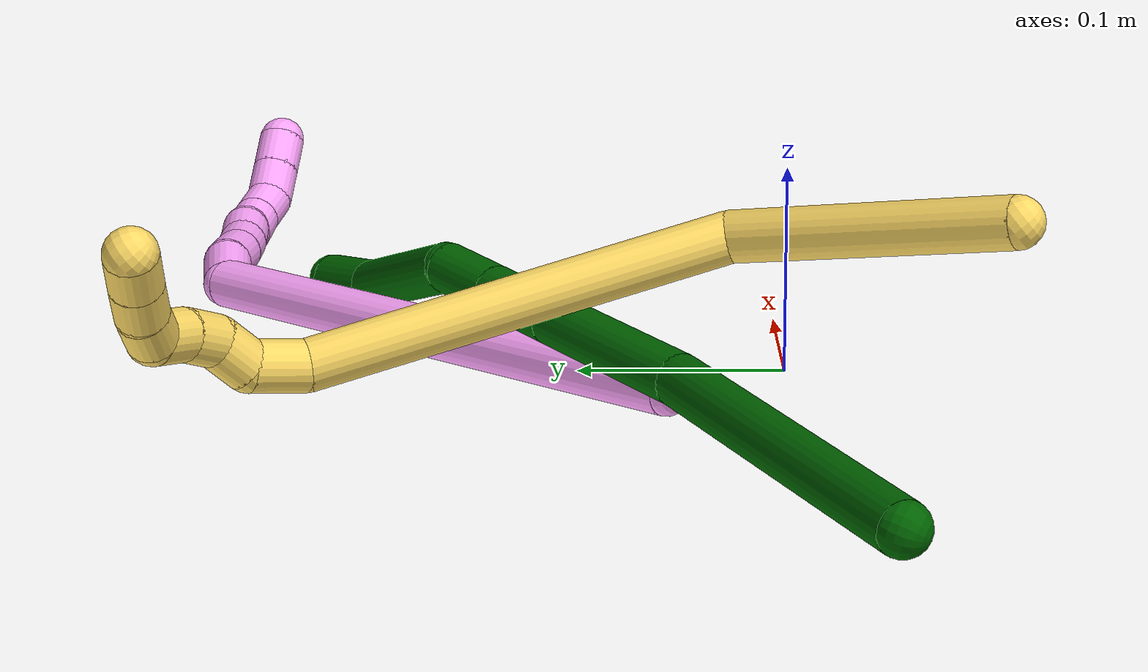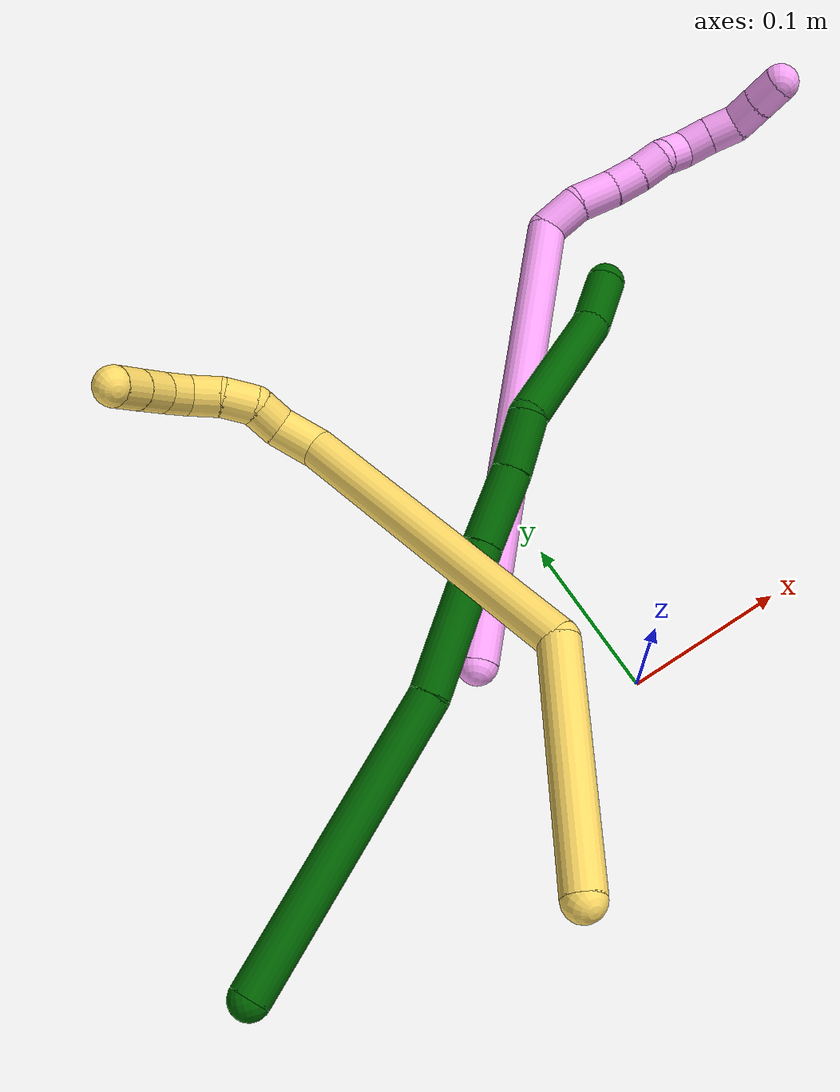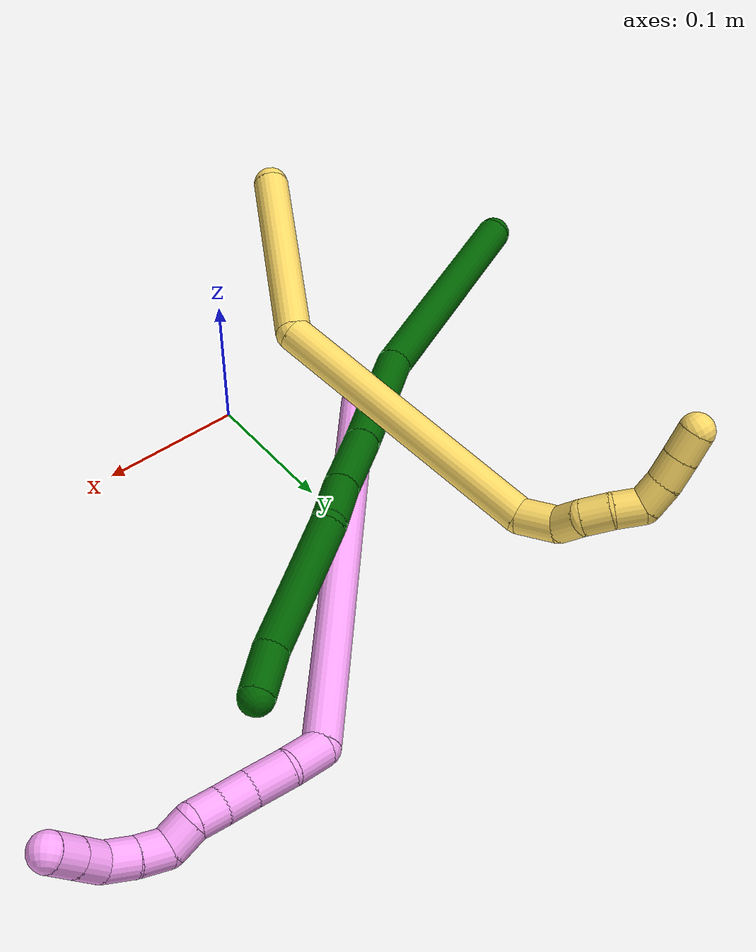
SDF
<sdf version="1.7">
 <world name="default">
  <model name="4">
   <static>0</static>
   <link name="4">
    <collision name="collision-cylinder-e_1_1_4">
     <pose>-0.03721 -0.024929 0.145551 0.169625 -0.246838 -0.021092</pose>
     <geometry><cylinder><radius>0.0125</radius><length>0.304573</length></cylinder></geometry>
     <surface>
      <friction><ode><mu>1.16</mu><mu2>1.16</mu2><slip1>0</slip1><slip2>0</slip2></ode></friction>
      <contact><ode><kp>1e+06</kp><kd>1</kd><max_vel>0</max_vel><min_depth>0.001</min_depth></ode></contact>
     </surface>
    </collision>
    <visual name="visual-cylinder-e_1_1_4">
     <pose>-0.03721 -0.024929 0.145551 0.169625 -0.246838 -0.021092</pose>
     <geometry><cylinder><radius>0.0125</radius><length>0.304573</length></cylinder></geometry>
     <material><ambient>1 0.65098 0.996078 1</ambient></material>
    </visual>
    <collision name="collision-cylinder-e_2_4_5">
     <pose>-0.074835 -0.060305 0.299419 0.89851 -0.03112 -0.015005</pose>
     <geometry><cylinder><radius>0.0125</radius><length>0.026719</length></cylinder></geometry>
     <surface>
      <friction><ode><mu>1.16</mu><mu2>1.16</mu2><slip1>0</slip1><slip2>0</slip2></ode></friction>
      <contact><ode><kp>1e+06</kp><kd>1</kd><max_vel>0</max_vel><min_depth>0.001</min_depth></ode></contact>
     </surface>
    </collision>
    <visual name="visual-cylinder-e_2_4_5">
     <pose>-0.074835 -0.060305 0.299419 0.89851 -0.03112 -0.015005</pose>
     <geometry><cylinder><radius>0.0125</radius><length>0.026719</length></cylinder></geometry>
     <material><ambient>1 0.65098 0.996078 1</ambient></material>
    </visual>
    <collision name="collision-cylinder-e_3_5_6">
     <pose>-0.071691 -0.081158 0.315213 0.947619 0.270937 0.139557</pose>
     <geometry><cylinder><radius>0.0125</radius><length>0.026598</length></cylinder></geometry>
     <surface>
      <friction><ode><mu>1.16</mu><mu2>1.16</mu2><slip1>0</slip1><slip2>0</slip2></ode></friction>
      <contact><ode><kp>1e+06</kp><kd>1</kd><max_vel>0</max_vel><min_depth>0.001</min_depth></ode></contact>
     </surface>
    </collision>
    <visual name="visual-cylinder-e_3_5_6">
     <pose>-0.071691 -0.081158 0.315213 0.947619 0.270937 0.139557</pose>
     <geometry><cylinder><radius>0.0125</radius><length>0.026598</length></cylinder></geometry>
     <material><ambient>1 0.65098 0.996078 1</ambient></material>
    </visual>
    <collision name="collision-cylinder-e_4_6_7">
     <pose>-0.066234 -0.099796 0.32885 0.928562 0.182566 0.091618</pose>
     <geometry><cylinder><radius>0.0125</radius><length>0.02091</length></cylinder></geometry>
     <surface>
      <friction><ode><mu>1.16</mu><mu2>1.16</mu2><slip1>0</slip1><slip2>0</slip2></ode></friction>
      <contact><ode><kp>1e+06</kp><kd>1</kd><max_vel>0</max_vel><min_depth>0.001</min_depth></ode></contact>
     </surface>
    </collision>
    <visual name="visual-cylinder-e_4_6_7">
     <pose>-0.066234 -0.099796 0.32885 0.928562 0.182566 0.091618</pose>
     <geometry><cylinder><radius>0.0125</radius><length>0.02091</length></cylinder></geometry>
     <material><ambient>1 0.65098 0.996078 1</ambient></material>
    </visual>
    <collision name="collision-cylinder-e_5_7_8">
     <pose>-0.063882 -0.116203 0.340917 0.944931 0.044968 0.022985</pose>
     <geometry><cylinder><radius>0.0125</radius><length>0.020193</length></cylinder></geometry>
     <surface>
      <friction><ode><mu>1.16</mu><mu2>1.16</mu2><slip1>0</slip1><slip2>0</slip2></ode></friction>
      <contact><ode><kp>1e+06</kp><kd>1</kd><max_vel>0</max_vel><min_depth>0.001</min_depth></ode></contact>
     </surface>
    </collision>
    <visual name="visual-cylinder-e_5_7_8">
     <pose>-0.063882 -0.116203 0.340917 0.944931 0.044968 0.022985</pose>
     <geometry><cylinder><radius>0.0125</radius><length>0.020193</length></cylinder></geometry>
     <material><ambient>1 0.65098 0.996078 1</ambient></material>
    </visual>
    <collision name="collision-cylinder-e_6_8_9">
     <pose>-0.058789 -0.129336 0.354289 0.5864 0.477699 0.146761</pose>
     <geometry><cylinder><radius>0.0125</radius><length>0.02018</length></cylinder></geometry>
     <surface>
      <friction><ode><mu>1.16</mu><mu2>1.16</mu2><slip1>0</slip1><slip2>0</slip2></ode></friction>
      <contact><ode><kp>1e+06</kp><kd>1</kd><max_vel>0</max_vel><min_depth>0.001</min_depth></ode></contact>
     </surface>
    </collision>
    <visual name="visual-cylinder-e_6_8_9">
     <pose>-0.058789 -0.129336 0.354289 0.5864 0.477699 0.146761</pose>
     <geometry><cylinder><radius>0.0125</radius><length>0.02018</length></cylinder></geometry>
     <material><ambient>1 0.65098 0.996078 1</ambient></material>
    </visual>
    <collision name="collision-cylinder-e_7_9_10">
     <pose>-0.053664 -0.143621 0.36585 1.15681 0.047661 0.031121</pose>
     <geometry><cylinder><radius>0.0125</radius><length>0.020396</length></cylinder></geometry>
     <surface>
      <friction><ode><mu>1.16</mu><mu2>1.16</mu2><slip1>0</slip1><slip2>0</slip2></ode></friction>
      <contact><ode><kp>1e+06</kp><kd>1</kd><max_vel>0</max_vel><min_depth>0.001</min_depth></ode></contact>
     </surface>
    </collision>
    <visual name="visual-cylinder-e_7_9_10">
     <pose>-0.053664 -0.143621 0.36585 1.15681 0.047661 0.031121</pose>
     <geometry><cylinder><radius>0.0125</radius><length>0.020396</length></cylinder></geometry>
     <material><ambient>1 0.65098 0.996078 1</ambient></material>
    </visual>
    <collision name="collision-cylinder-e_8_10_11">
     <pose>-0.052615 -0.162709 0.372862 1.2807 0.055235 0.04116</pose>
     <geometry><cylinder><radius>0.0125</radius><length>0.020407</length></cylinder></geometry>
     <surface>
      <friction><ode><mu>1.16</mu><mu2>1.16</mu2><slip1>0</slip1><slip2>0</slip2></ode></friction>
      <contact><ode><kp>1e+06</kp><kd>1</kd><max_vel>0</max_vel><min_depth>0.001</min_depth></ode></contact>
     </surface>
    </collision>
    <visual name="visual-cylinder-e_8_10_11">
     <pose>-0.052615 -0.162709 0.372862 1.2807 0.055235 0.04116</pose>
     <geometry><cylinder><radius>0.0125</radius><length>0.020407</length></cylinder></geometry>
     <material><ambient>1 0.65098 0.996078 1</ambient></material>
    </visual>
    <collision name="collision-cylinder-e_9_11_12">
     <pose>-0.056253 -0.181491 0.376787 1.4592 -0.433521 -0.388866</pose>
     <geometry><cylinder><radius>0.0125</radius><length>0.020004</length></cylinder></geometry>
     <surface>
      <friction><ode><mu>1.16</mu><mu2>1.16</mu2><slip1>0</slip1><slip2>0</slip2></ode></friction>
      <contact><ode><kp>1e+06</kp><kd>1</kd><max_vel>0</max_vel><min_depth>0.001</min_depth></ode></contact>
     </surface>
    </collision>
    <visual name="visual-cylinder-e_9_11_12">
     <pose>-0.056253 -0.181491 0.376787 1.4592 -0.433521 -0.388866</pose>
     <geometry><cylinder><radius>0.0125</radius><length>0.020004</length></cylinder></geometry>
     <material><ambient>1 0.65098 0.996078 1</ambient></material>
    </visual>
    <collision name="collision-cylinder-e_10_12_2">
     <pose>-0.064664 -0.199535 0.378824 1.4576 -0.433982 -0.388671</pose>
     <geometry><cylinder><radius>0.0125</radius><length>0.020019</length></cylinder></geometry>
     <surface>
      <friction><ode><mu>1.16</mu><mu2>1.16</mu2><slip1>0</slip1><slip2>0</slip2></ode></friction>
      <contact><ode><kp>1e+06</kp><kd>1</kd><max_vel>0</max_vel><min_depth>0.001</min_depth></ode></contact>
     </surface>
    </collision>
    <visual name="visual-cylinder-e_10_12_2">
     <pose>-0.064664 -0.199535 0.378824 1.4576 -0.433982 -0.388671</pose>
     <geometry><cylinder><radius>0.0125</radius><length>0.020019</length></cylinder></geometry>
     <material><ambient>1 0.65098 0.996078 1</ambient></material>
    </visual>
    <collision name="collision-sphere-2">
     <pose>-0.068873 -0.208559 0.37985 0 -0 0</pose>
     <geometry><sphere><radius>0.0125</radius></sphere></geometry>
     <surface>
      <friction><ode><mu>1.16</mu><mu2>1.16</mu2><slip1>0</slip1><slip2>0</slip2></ode></friction>
      <contact><ode><kp>1e+06</kp><kd>1</kd><max_vel>0</max_vel><min_depth>0.001</min_depth></ode></contact>
     </surface>
    </collision>
    <visual name="visual-sphere-2">
     <pose>-0.068873 -0.208559 0.37985 0 -0 0</pose>
     <geometry><sphere><radius>0.0125</radius></sphere></geometry>
     <material><ambient>1 0.65098 0.996078 1</ambient></material>
    </visual>
    <collision name="collision-sphere-12">
     <pose>-0.060455 -0.190512 0.377798 0 -0 0</pose>
     <geometry><sphere><radius>0.0125</radius></sphere></geometry>
     <surface>
      <friction><ode><mu>1.16</mu><mu2>1.16</mu2><slip1>0</slip1><slip2>0</slip2></ode></friction>
      <contact><ode><kp>1e+06</kp><kd>1</kd><max_vel>0</max_vel><min_depth>0.001</min_depth></ode></contact>
     </surface>
    </collision>
    <visual name="visual-sphere-12">
     <pose>-0.060455 -0.190512 0.377798 0 -0 0</pose>
     <geometry><sphere><radius>0.0125</radius></sphere></geometry>
     <material><ambient>1 0.65098 0.996078 1</ambient></material>
    </visual>
    <collision name="collision-sphere-11">
     <pose>-0.052052 -0.172471 0.375776 0 -0 0</pose>
     <geometry><sphere><radius>0.0125</radius></sphere></geometry>
     <surface>
      <friction><ode><mu>1.16</mu><mu2>1.16</mu2><slip1>0</slip1><slip2>0</slip2></ode></friction>
      <contact><ode><kp>1e+06</kp><kd>1</kd><max_vel>0</max_vel><min_depth>0.001</min_depth></ode></contact>
     </surface>
    </collision>
    <visual name="visual-sphere-11">
     <pose>-0.052052 -0.172471 0.375776 0 -0 0</pose>
     <geometry><sphere><radius>0.0125</radius></sphere></geometry>
     <material><ambient>1 0.65098 0.996078 1</ambient></material>
    </visual>
    <collision name="collision-sphere-10">
     <pose>-0.053178 -0.152947 0.369948 0 -0 0</pose>
     <geometry><sphere><radius>0.0125</radius></sphere></geometry>
     <surface>
      <friction><ode><mu>1.16</mu><mu2>1.16</mu2><slip1>0</slip1><slip2>0</slip2></ode></friction>
      <contact><ode><kp>1e+06</kp><kd>1</kd><max_vel>0</max_vel><min_depth>0.001</min_depth></ode></contact>
     </surface>
    </collision>
    <visual name="visual-sphere-10">
     <pose>-0.053178 -0.152947 0.369948 0 -0 0</pose>
     <geometry><sphere><radius>0.0125</radius></sphere></geometry>
     <material><ambient>1 0.65098 0.996078 1</ambient></material>
    </visual>
    <collision name="collision-sphere-9">
     <pose>-0.05415 -0.134295 0.361753 0 -0 0</pose>
     <geometry><sphere><radius>0.0125</radius></sphere></geometry>
     <surface>
      <friction><ode><mu>1.16</mu><mu2>1.16</mu2><slip1>0</slip1><slip2>0</slip2></ode></friction>
      <contact><ode><kp>1e+06</kp><kd>1</kd><max_vel>0</max_vel><min_depth>0.001</min_depth></ode></contact>
     </surface>
    </collision>
    <visual name="visual-sphere-9">
     <pose>-0.05415 -0.134295 0.361753 0 -0 0</pose>
     <geometry><sphere><radius>0.0125</radius></sphere></geometry>
     <material><ambient>1 0.65098 0.996078 1</ambient></material>
    </visual>
    <collision name="collision-sphere-4">
     <pose>-0.074419 -0.049857 0.291103 0 -0 0</pose>
     <geometry><sphere><radius>0.0125</radius></sphere></geometry>
     <surface>
      <friction><ode><mu>1.16</mu><mu2>1.16</mu2><slip1>0</slip1><slip2>0</slip2></ode></friction>
      <contact><ode><kp>1e+06</kp><kd>1</kd><max_vel>0</max_vel><min_depth>0.001</min_depth></ode></contact>
     </surface>
    </collision>
    <visual name="visual-sphere-4">
     <pose>-0.074419 -0.049857 0.291103 0 -0 0</pose>
     <geometry><sphere><radius>0.0125</radius></sphere></geometry>
     <material><ambient>1 0.65098 0.996078 1</ambient></material>
    </visual>
    <collision name="collision-sphere-1">
     <geometry><sphere><radius>0.0125</radius></sphere></geometry>
     <surface>
      <friction><ode><mu>1.16</mu><mu2>1.16</mu2><slip1>0</slip1><slip2>0</slip2></ode></friction>
      <contact><ode><kp>1e+06</kp><kd>1</kd><max_vel>0</max_vel><min_depth>0.001</min_depth></ode></contact>
     </surface>
    </collision>
    <visual name="visual-sphere-1">
     <geometry><sphere><radius>0.0125</radius></sphere></geometry>
     <material><ambient>1 0.65098 0.996078 1</ambient></material>
    </visual>
    <collision name="collision-sphere-8">
     <pose>-0.063428 -0.124378 0.346825 0 -0 0</pose>
     <geometry><sphere><radius>0.0125</radius></sphere></geometry>
     <surface>
      <friction><ode><mu>1.16</mu><mu2>1.16</mu2><slip1>0</slip1><slip2>0</slip2></ode></friction>
      <contact><ode><kp>1e+06</kp><kd>1</kd><max_vel>0</max_vel><min_depth>0.001</min_depth></ode></contact>
     </surface>
    </collision>
    <visual name="visual-sphere-8">
     <pose>-0.063428 -0.124378 0.346825 0 -0 0</pose>
     <geometry><sphere><radius>0.0125</radius></sphere></geometry>
     <material><ambient>1 0.65098 0.996078 1</ambient></material>
    </visual>
    <collision name="collision-sphere-5">
     <pose>-0.07525 -0.070752 0.307735 0 -0 0</pose>
     <geometry><sphere><radius>0.0125</radius></sphere></geometry>
     <surface>
      <friction><ode><mu>1.16</mu><mu2>1.16</mu2><slip1>0</slip1><slip2>0</slip2></ode></friction>
      <contact><ode><kp>1e+06</kp><kd>1</kd><max_vel>0</max_vel><min_depth>0.001</min_depth></ode></contact>
     </surface>
    </collision>
    <visual name="visual-sphere-5">
     <pose>-0.07525 -0.070752 0.307735 0 -0 0</pose>
     <geometry><sphere><radius>0.0125</radius></sphere></geometry>
     <material><ambient>1 0.65098 0.996078 1</ambient></material>
    </visual>
    <collision name="collision-sphere-6">
     <pose>-0.068132 -0.091563 0.322692 0 -0 0</pose>
     <geometry><sphere><radius>0.0125</radius></sphere></geometry>
     <surface>
      <friction><ode><mu>1.16</mu><mu2>1.16</mu2><slip1>0</slip1><slip2>0</slip2></ode></friction>
      <contact><ode><kp>1e+06</kp><kd>1</kd><max_vel>0</max_vel><min_depth>0.001</min_depth></ode></contact>
     </surface>
    </collision>
    <visual name="visual-sphere-6">
     <pose>-0.068132 -0.091563 0.322692 0 -0 0</pose>
     <geometry><sphere><radius>0.0125</radius></sphere></geometry>
     <material><ambient>1 0.65098 0.996078 1</ambient></material>
    </visual>
    <collision name="collision-sphere-7">
     <pose>-0.064336 -0.108029 0.335008 0 -0 0</pose>
     <geometry><sphere><radius>0.0125</radius></sphere></geometry>
     <surface>
      <friction><ode><mu>1.16</mu><mu2>1.16</mu2><slip1>0</slip1><slip2>0</slip2></ode></friction>
      <contact><ode><kp>1e+06</kp><kd>1</kd><max_vel>0</max_vel><min_depth>0.001</min_depth></ode></contact>
     </surface>
    </collision>
    <visual name="visual-sphere-7">
     <pose>-0.064336 -0.108029 0.335008 0 -0 0</pose>
     <geometry><sphere><radius>0.0125</radius></sphere></geometry>
     <material><ambient>1 0.65098 0.996078 1</ambient></material>
    </visual>
    <inertial>
     <pose>-0.047378 -0.064561 0.223635 0 -0 0</pose>
     <mass>0.5</mass>
     <inertia>
      <ixx>0.002255</ixx>
      <ixy>0</ixy>
      <ixz>0</ixz>
      <iyy>0.002277</iyy>
      <iyz>0</iyz>
      <izz>0.001007</izz>
     </inertia>
    </inertial>
   </link>
   <pose>-0.073893 0.058457 0.011493 -2.14044 0.996559 -1.20112</pose>
  </model>
  <model name="5">
   <static>0</static>
   <link name="5">
    <collision name="collision-cylinder-e_1_1_4">
     <pose>0.011543 0.045218 -0.055398 -2.45703 0.160039 -0.442743</pose>
     <geometry><cylinder><radius>0.0125</radius><length>0.14487</length></cylinder></geometry>
     <surface>
      <friction><ode><mu>1.16</mu><mu2>1.16</mu2><slip1>0</slip1><slip2>0</slip2></ode></friction>
      <contact><ode><kp>1e+06</kp><kd>1</kd><max_vel>0</max_vel><min_depth>0.001</min_depth></ode></contact>
     </surface>
    </collision>
    <visual name="visual-cylinder-e_1_1_4">
     <pose>0.011543 0.045218 -0.055398 -2.45703 0.160039 -0.442743</pose>
     <geometry><cylinder><radius>0.0125</radius><length>0.14487</length></cylinder></geometry>
     <material><ambient>1 0.858824 0.4 1</ambient></material>
    </visual>
    <collision name="collision-cylinder-e_2_4_5">
     <pose>-0.017716 0.111615 -0.202623 -2.91492 -0.408598 2.13686</pose>
     <geometry><cylinder><radius>0.0125</radius><length>0.205383</length></cylinder></geometry>
     <surface>
      <friction><ode><mu>1.16</mu><mu2>1.16</mu2><slip1>0</slip1><slip2>0</slip2></ode></friction>
      <contact><ode><kp>1e+06</kp><kd>1</kd><max_vel>0</max_vel><min_depth>0.001</min_depth></ode></contact>
     </surface>
    </collision>
    <visual name="visual-cylinder-e_2_4_5">
     <pose>-0.017716 0.111615 -0.202623 -2.91492 -0.408598 2.13686</pose>
     <geometry><cylinder><radius>0.0125</radius><length>0.205383</length></cylinder></geometry>
     <material><ambient>1 0.858824 0.4 1</ambient></material>
    </visual>
    <collision name="collision-cylinder-e_3_5_6">
     <pose>-0.068951 0.136368 -0.303039 -2.7472 -0.8426 2.30283</pose>
     <geometry><cylinder><radius>0.0125</radius><length>0.027957</length></cylinder></geometry>
     <surface>
      <friction><ode><mu>1.16</mu><mu2>1.16</mu2><slip1>0</slip1><slip2>0</slip2></ode></friction>
      <contact><ode><kp>1e+06</kp><kd>1</kd><max_vel>0</max_vel><min_depth>0.001</min_depth></ode></contact>
     </surface>
    </collision>
    <visual name="visual-cylinder-e_3_5_6">
     <pose>-0.068951 0.136368 -0.303039 -2.7472 -0.8426 2.30283</pose>
     <geometry><cylinder><radius>0.0125</radius><length>0.027957</length></cylinder></geometry>
     <material><ambient>1 0.858824 0.4 1</ambient></material>
    </visual>
    <collision name="collision-cylinder-e_4_6_7">
     <pose>-0.087861 0.145665 -0.312727 -1.76049 -0.968553 1.13389</pose>
     <geometry><cylinder><radius>0.0125</radius><length>0.020573</length></cylinder></geometry>
     <surface>
      <friction><ode><mu>1.16</mu><mu2>1.16</mu2><slip1>0</slip1><slip2>0</slip2></ode></friction>
      <contact><ode><kp>1e+06</kp><kd>1</kd><max_vel>0</max_vel><min_depth>0.001</min_depth></ode></contact>
     </surface>
    </collision>
    <visual name="visual-cylinder-e_4_6_7">
     <pose>-0.087861 0.145665 -0.312727 -1.76049 -0.968553 1.13389</pose>
     <geometry><cylinder><radius>0.0125</radius><length>0.020573</length></cylinder></geometry>
     <material><ambient>1 0.858824 0.4 1</ambient></material>
    </visual>
    <collision name="collision-cylinder-e_5_7_8">
     <pose>-0.106282 0.152335 -0.316471 -2.79795 -1.29539 2.69066</pose>
     <geometry><cylinder><radius>0.0125</radius><length>0.020668</length></cylinder></geometry>
     <surface>
      <friction><ode><mu>1.16</mu><mu2>1.16</mu2><slip1>0</slip1><slip2>0</slip2></ode></friction>
      <contact><ode><kp>1e+06</kp><kd>1</kd><max_vel>0</max_vel><min_depth>0.001</min_depth></ode></contact>
     </surface>
    </collision>
    <visual name="visual-cylinder-e_5_7_8">
     <pose>-0.106282 0.152335 -0.316471 -2.79795 -1.29539 2.69066</pose>
     <geometry><cylinder><radius>0.0125</radius><length>0.020668</length></cylinder></geometry>
     <material><ambient>1 0.858824 0.4 1</ambient></material>
    </visual>
    <collision name="collision-cylinder-e_6_8_9">
     <pose>-0.125753 0.151904 -0.322556 2.76051 -1.19991 -2.59194</pose>
     <geometry><cylinder><radius>0.0125</radius><length>0.020443</length></cylinder></geometry>
     <surface>
      <friction><ode><mu>1.16</mu><mu2>1.16</mu2><slip1>0</slip1><slip2>0</slip2></ode></friction>
      <contact><ode><kp>1e+06</kp><kd>1</kd><max_vel>0</max_vel><min_depth>0.001</min_depth></ode></contact>
     </surface>
    </collision>
    <visual name="visual-cylinder-e_6_8_9">
     <pose>-0.125753 0.151904 -0.322556 2.76051 -1.19991 -2.59194</pose>
     <geometry><cylinder><radius>0.0125</radius><length>0.020443</length></cylinder></geometry>
     <material><ambient>1 0.858824 0.4 1</ambient></material>
    </visual>
    <collision name="collision-cylinder-e_7_9_10">
     <pose>-0.144559 0.151591 -0.322338 -0.283485 -1.18128 0.190774</pose>
     <geometry><cylinder><radius>0.0125</radius><length>0.020061</length></cylinder></geometry>
     <surface>
      <friction><ode><mu>1.16</mu><mu2>1.16</mu2><slip1>0</slip1><slip2>0</slip2></ode></friction>
      <contact><ode><kp>1e+06</kp><kd>1</kd><max_vel>0</max_vel><min_depth>0.001</min_depth></ode></contact>
     </surface>
    </collision>
    <visual name="visual-cylinder-e_7_9_10">
     <pose>-0.144559 0.151591 -0.322338 -0.283485 -1.18128 0.190774</pose>
     <geometry><cylinder><radius>0.0125</radius><length>0.020061</length></cylinder></geometry>
     <material><ambient>1 0.858824 0.4 1</ambient></material>
    </visual>
    <collision name="collision-cylinder-e_8_10_11">
     <pose>-0.162429 0.154216 -0.313796 -0.309039 -1.03269 0.176398</pose>
     <geometry><cylinder><radius>0.0125</radius><length>0.02001</length></cylinder></geometry>
     <surface>
      <friction><ode><mu>1.16</mu><mu2>1.16</mu2><slip1>0</slip1><slip2>0</slip2></ode></friction>
      <contact><ode><kp>1e+06</kp><kd>1</kd><max_vel>0</max_vel><min_depth>0.001</min_depth></ode></contact>
     </surface>
    </collision>
    <visual name="visual-cylinder-e_8_10_11">
     <pose>-0.162429 0.154216 -0.313796 -0.309039 -1.03269 0.176398</pose>
     <geometry><cylinder><radius>0.0125</radius><length>0.02001</length></cylinder></geometry>
     <material><ambient>1 0.858824 0.4 1</ambient></material>
    </visual>
    <collision name="collision-cylinder-e_9_11_2">
     <pose>-0.179512 0.15742 -0.303857 -0.314563 -1.01157 0.175217</pose>
     <geometry><cylinder><radius>0.0125</radius><length>0.020034</length></cylinder></geometry>
     <surface>
      <friction><ode><mu>1.16</mu><mu2>1.16</mu2><slip1>0</slip1><slip2>0</slip2></ode></friction>
      <contact><ode><kp>1e+06</kp><kd>1</kd><max_vel>0</max_vel><min_depth>0.001</min_depth></ode></contact>
     </surface>
    </collision>
    <visual name="visual-cylinder-e_9_11_2">
     <pose>-0.179512 0.15742 -0.303857 -0.314563 -1.01157 0.175217</pose>
     <geometry><cylinder><radius>0.0125</radius><length>0.020034</length></cylinder></geometry>
     <material><ambient>1 0.858824 0.4 1</ambient></material>
    </visual>
    <collision name="collision-sphere-2">
     <pose>-0.188003 0.159065 -0.298804 0 -0 0</pose>
     <geometry><sphere><radius>0.0125</radius></sphere></geometry>
     <surface>
      <friction><ode><mu>1.16</mu><mu2>1.16</mu2><slip1>0</slip1><slip2>0</slip2></ode></friction>
      <contact><ode><kp>1e+06</kp><kd>1</kd><max_vel>0</max_vel><min_depth>0.001</min_depth></ode></contact>
     </surface>
    </collision>
    <visual name="visual-sphere-2">
     <pose>-0.188003 0.159065 -0.298804 0 -0 0</pose>
     <geometry><sphere><radius>0.0125</radius></sphere></geometry>
     <material><ambient>1 0.858824 0.4 1</ambient></material>
    </visual>
    <collision name="collision-sphere-11">
     <pose>-0.171021 0.155776 -0.308911 0 -0 0</pose>
     <geometry><sphere><radius>0.0125</radius></sphere></geometry>
     <surface>
      <friction><ode><mu>1.16</mu><mu2>1.16</mu2><slip1>0</slip1><slip2>0</slip2></ode></friction>
      <contact><ode><kp>1e+06</kp><kd>1</kd><max_vel>0</max_vel><min_depth>0.001</min_depth></ode></contact>
     </surface>
    </collision>
    <visual name="visual-sphere-11">
     <pose>-0.171021 0.155776 -0.308911 0 -0 0</pose>
     <geometry><sphere><radius>0.0125</radius></sphere></geometry>
     <material><ambient>1 0.858824 0.4 1</ambient></material>
    </visual>
    <collision name="collision-sphere-10">
     <pose>-0.153838 0.152657 -0.318681 0 -0 0</pose>
     <geometry><sphere><radius>0.0125</radius></sphere></geometry>
     <surface>
      <friction><ode><mu>1.16</mu><mu2>1.16</mu2><slip1>0</slip1><slip2>0</slip2></ode></friction>
      <contact><ode><kp>1e+06</kp><kd>1</kd><max_vel>0</max_vel><min_depth>0.001</min_depth></ode></contact>
     </surface>
    </collision>
    <visual name="visual-sphere-10">
     <pose>-0.153838 0.152657 -0.318681 0 -0 0</pose>
     <geometry><sphere><radius>0.0125</radius></sphere></geometry>
     <material><ambient>1 0.858824 0.4 1</ambient></material>
    </visual>
    <collision name="collision-sphere-9">
     <pose>-0.135279 0.150526 -0.325995 0 -0 0</pose>
     <geometry><sphere><radius>0.0125</radius></sphere></geometry>
     <surface>
      <friction><ode><mu>1.16</mu><mu2>1.16</mu2><slip1>0</slip1><slip2>0</slip2></ode></friction>
      <contact><ode><kp>1e+06</kp><kd>1</kd><max_vel>0</max_vel><min_depth>0.001</min_depth></ode></contact>
     </surface>
    </collision>
    <visual name="visual-sphere-9">
     <pose>-0.135279 0.150526 -0.325995 0 -0 0</pose>
     <geometry><sphere><radius>0.0125</radius></sphere></geometry>
     <material><ambient>1 0.858824 0.4 1</ambient></material>
    </visual>
    <collision name="collision-sphere-4">
     <pose>0.023086 0.090436 -0.110796 0 -0 0</pose>
     <geometry><sphere><radius>0.0125</radius></sphere></geometry>
     <surface>
      <friction><ode><mu>1.16</mu><mu2>1.16</mu2><slip1>0</slip1><slip2>0</slip2></ode></friction>
      <contact><ode><kp>1e+06</kp><kd>1</kd><max_vel>0</max_vel><min_depth>0.001</min_depth></ode></contact>
     </surface>
    </collision>
    <visual name="visual-sphere-4">
     <pose>0.023086 0.090436 -0.110796 0 -0 0</pose>
     <geometry><sphere><radius>0.0125</radius></sphere></geometry>
     <material><ambient>1 0.858824 0.4 1</ambient></material>
    </visual>
    <collision name="collision-sphere-1">
     <geometry><sphere><radius>0.0125</radius></sphere></geometry>
     <surface>
      <friction><ode><mu>1.16</mu><mu2>1.16</mu2><slip1>0</slip1><slip2>0</slip2></ode></friction>
      <contact><ode><kp>1e+06</kp><kd>1</kd><max_vel>0</max_vel><min_depth>0.001</min_depth></ode></contact>
     </surface>
    </collision>
    <visual name="visual-sphere-1">
     <geometry><sphere><radius>0.0125</radius></sphere></geometry>
     <material><ambient>1 0.858824 0.4 1</ambient></material>
    </visual>
    <collision name="collision-sphere-8">
     <pose>-0.116226 0.153282 -0.319117 0 -0 0</pose>
     <geometry><sphere><radius>0.0125</radius></sphere></geometry>
     <surface>
      <friction><ode><mu>1.16</mu><mu2>1.16</mu2><slip1>0</slip1><slip2>0</slip2></ode></friction>
      <contact><ode><kp>1e+06</kp><kd>1</kd><max_vel>0</max_vel><min_depth>0.001</min_depth></ode></contact>
     </surface>
    </collision>
    <visual name="visual-sphere-8">
     <pose>-0.116226 0.153282 -0.319117 0 -0 0</pose>
     <geometry><sphere><radius>0.0125</radius></sphere></geometry>
     <material><ambient>1 0.858824 0.4 1</ambient></material>
    </visual>
    <collision name="collision-sphere-5">
     <pose>-0.058517 0.132794 -0.29445 0 -0 0</pose>
     <geometry><sphere><radius>0.0125</radius></sphere></geometry>
     <surface>
      <friction><ode><mu>1.16</mu><mu2>1.16</mu2><slip1>0</slip1><slip2>0</slip2></ode></friction>
      <contact><ode><kp>1e+06</kp><kd>1</kd><max_vel>0</max_vel><min_depth>0.001</min_depth></ode></contact>
     </surface>
    </collision>
    <visual name="visual-sphere-5">
     <pose>-0.058517 0.132794 -0.29445 0 -0 0</pose>
     <geometry><sphere><radius>0.0125</radius></sphere></geometry>
     <material><ambient>1 0.858824 0.4 1</ambient></material>
    </visual>
    <collision name="collision-sphere-6">
     <pose>-0.079384 0.139943 -0.311628 0 -0 0</pose>
     <geometry><sphere><radius>0.0125</radius></sphere></geometry>
     <surface>
      <friction><ode><mu>1.16</mu><mu2>1.16</mu2><slip1>0</slip1><slip2>0</slip2></ode></friction>
      <contact><ode><kp>1e+06</kp><kd>1</kd><max_vel>0</max_vel><min_depth>0.001</min_depth></ode></contact>
     </surface>
    </collision>
    <visual name="visual-sphere-6">
     <pose>-0.079384 0.139943 -0.311628 0 -0 0</pose>
     <geometry><sphere><radius>0.0125</radius></sphere></geometry>
     <material><ambient>1 0.858824 0.4 1</ambient></material>
    </visual>
    <collision name="collision-sphere-7">
     <pose>-0.096337 0.151388 -0.313825 0 -0 0</pose>
     <geometry><sphere><radius>0.0125</radius></sphere></geometry>
     <surface>
      <friction><ode><mu>1.16</mu><mu2>1.16</mu2><slip1>0</slip1><slip2>0</slip2></ode></friction>
      <contact><ode><kp>1e+06</kp><kd>1</kd><max_vel>0</max_vel><min_depth>0.001</min_depth></ode></contact>
     </surface>
    </collision>
    <visual name="visual-sphere-7">
     <pose>-0.096337 0.151388 -0.313825 0 -0 0</pose>
     <geometry><sphere><radius>0.0125</radius></sphere></geometry>
     <material><ambient>1 0.858824 0.4 1</ambient></material>
    </visual>
    <inertial>
     <pose>-0.040431 0.103637 -0.193029 0 -0 0</pose>
     <mass>0.5</mass>
     <inertia>
      <ixx>0.000316</ixx>
      <ixy>0</ixy>
      <ixz>0</ixz>
      <iyy>0.000748</iyy>
      <iyz>0</iyz>
      <izz>-7.9e-05</izz>
     </inertia>
    </inertial>
   </link>
   <pose>-0.112382 -0.094794 0.099034 0.787699 0.474665 -0.42681</pose>
  </model>
  <model name="6">
   <static>0</static>
   <link name="6">
    <collision name="collision-cylinder-e_1_1_4">
     <pose>0.045335 0.049521 -0.066805 -2.5037 0.499122 -1.31465</pose>
     <geometry><cylinder><radius>0.0125</radius><length>0.189426</length></cylinder></geometry>
     <surface>
      <friction><ode><mu>1.16</mu><mu2>1.16</mu2><slip1>0</slip1><slip2>0</slip2></ode></friction>
      <contact><ode><kp>1e+06</kp><kd>1</kd><max_vel>0</max_vel><min_depth>0.001</min_depth></ode></contact>
     </surface>
    </collision>
    <visual name="visual-cylinder-e_1_1_4">
     <pose>0.045335 0.049521 -0.066805 -2.5037 0.499122 -1.31465</pose>
     <geometry><cylinder><radius>0.0125</radius><length>0.189426</length></cylinder></geometry>
     <material><ambient>0 0.392157 0.003922 1</ambient></material>
    </visual>
    <collision name="collision-cylinder-e_2_4_5">
     <pose>0.110245 0.116943 -0.172407 -2.7093 0.4296 -1.56436</pose>
     <geometry><cylinder><radius>0.0125</radius><length>0.093996</length></cylinder></geometry>
     <surface>
      <friction><ode><mu>1.16</mu><mu2>1.16</mu2><slip1>0</slip1><slip2>0</slip2></ode></friction>
      <contact><ode><kp>1e+06</kp><kd>1</kd><max_vel>0</max_vel><min_depth>0.001</min_depth></ode></contact>
     </surface>
    </collision>
    <visual name="visual-cylinder-e_2_4_5">
     <pose>0.110245 0.116943 -0.172407 -2.7093 0.4296 -1.56436</pose>
     <geometry><cylinder><radius>0.0125</radius><length>0.093996</length></cylinder></geometry>
     <material><ambient>0 0.392157 0.003922 1</ambient></material>
    </visual>
    <collision name="collision-cylinder-e_3_5_6">
     <pose>0.140636 0.144717 -0.230973 -2.6784 0.455205 -1.55276</pose>
     <geometry><cylinder><radius>0.0125</radius><length>0.049206</length></cylinder></geometry>
     <surface>
      <friction><ode><mu>1.16</mu><mu2>1.16</mu2><slip1>0</slip1><slip2>0</slip2></ode></friction>
      <contact><ode><kp>1e+06</kp><kd>1</kd><max_vel>0</max_vel><min_depth>0.001</min_depth></ode></contact>
     </surface>
    </collision>
    <visual name="visual-cylinder-e_3_5_6">
     <pose>0.140636 0.144717 -0.230973 -2.6784 0.455205 -1.55276</pose>
     <geometry><cylinder><radius>0.0125</radius><length>0.049206</length></cylinder></geometry>
     <material><ambient>0 0.392157 0.003922 1</ambient></material>
    </visual>
    <collision name="collision-cylinder-e_4_6_7">
     <pose>0.158575 0.16127 -0.266773 -2.74679 0.389214 -1.55617</pose>
     <geometry><cylinder><radius>0.0125</radius><length>0.03754</length></cylinder></geometry>
     <surface>
      <friction><ode><mu>1.16</mu><mu2>1.16</mu2><slip1>0</slip1><slip2>0</slip2></ode></friction>
      <contact><ode><kp>1e+06</kp><kd>1</kd><max_vel>0</max_vel><min_depth>0.001</min_depth></ode></contact>
     </surface>
    </collision>
    <visual name="visual-cylinder-e_4_6_7">
     <pose>0.158575 0.16127 -0.266773 -2.74679 0.389214 -1.55617</pose>
     <geometry><cylinder><radius>0.0125</radius><length>0.03754</length></cylinder></geometry>
     <material><ambient>0 0.392157 0.003922 1</ambient></material>
    </visual>
    <collision name="collision-cylinder-e_5_7_8">
     <pose>0.201105 0.18216 -0.309946 -2.65931 0.85749 -2.15441</pose>
     <geometry><cylinder><radius>0.0125</radius><length>0.093645</length></cylinder></geometry>
     <surface>
      <friction><ode><mu>1.16</mu><mu2>1.16</mu2><slip1>0</slip1><slip2>0</slip2></ode></friction>
      <contact><ode><kp>1e+06</kp><kd>1</kd><max_vel>0</max_vel><min_depth>0.001</min_depth></ode></contact>
     </surface>
    </collision>
    <visual name="visual-cylinder-e_5_7_8">
     <pose>0.201105 0.18216 -0.309946 -2.65931 0.85749 -2.15441</pose>
     <geometry><cylinder><radius>0.0125</radius><length>0.093645</length></cylinder></geometry>
     <material><ambient>0 0.392157 0.003922 1</ambient></material>
    </visual>
    <collision name="collision-cylinder-e_6_8_2">
     <pose>0.246865 0.201288 -0.351089 -2.80372 0.609173 -2.14738</pose>
     <geometry><cylinder><radius>0.0125</radius><length>0.036188</length></cylinder></geometry>
     <surface>
      <friction><ode><mu>1.16</mu><mu2>1.16</mu2><slip1>0</slip1><slip2>0</slip2></ode></friction>
      <contact><ode><kp>1e+06</kp><kd>1</kd><max_vel>0</max_vel><min_depth>0.001</min_depth></ode></contact>
     </surface>
    </collision>
    <visual name="visual-cylinder-e_6_8_2">
     <pose>0.246865 0.201288 -0.351089 -2.80372 0.609173 -2.14738</pose>
     <geometry><cylinder><radius>0.0125</radius><length>0.036188</length></cylinder></geometry>
     <material><ambient>0 0.392157 0.003922 1</ambient></material>
    </visual>
    <collision name="collision-sphere-2">
     <pose>0.257218 0.206207 -0.365089 0 -0 0</pose>
     <geometry><sphere><radius>0.0125</radius></sphere></geometry>
     <surface>
      <friction><ode><mu>1.16</mu><mu2>1.16</mu2><slip1>0</slip1><slip2>0</slip2></ode></friction>
      <contact><ode><kp>1e+06</kp><kd>1</kd><max_vel>0</max_vel><min_depth>0.001</min_depth></ode></contact>
     </surface>
    </collision>
    <visual name="visual-sphere-2">
     <pose>0.257218 0.206207 -0.365089 0 -0 0</pose>
     <geometry><sphere><radius>0.0125</radius></sphere></geometry>
     <material><ambient>0 0.392157 0.003922 1</ambient></material>
    </visual>
    <collision name="collision-sphere-4">
     <pose>0.09067 0.099043 -0.13361 0 -0 0</pose>
     <geometry><sphere><radius>0.0125</radius></sphere></geometry>
     <surface>
      <friction><ode><mu>1.16</mu><mu2>1.16</mu2><slip1>0</slip1><slip2>0</slip2></ode></friction>
      <contact><ode><kp>1e+06</kp><kd>1</kd><max_vel>0</max_vel><min_depth>0.001</min_depth></ode></contact>
     </surface>
    </collision>
    <visual name="visual-sphere-4">
     <pose>0.09067 0.099043 -0.13361 0 -0 0</pose>
     <geometry><sphere><radius>0.0125</radius></sphere></geometry>
     <material><ambient>0 0.392157 0.003922 1</ambient></material>
    </visual>
    <collision name="collision-sphere-1">
     <geometry><sphere><radius>0.0125</radius></sphere></geometry>
     <surface>
      <friction><ode><mu>1.16</mu><mu2>1.16</mu2><slip1>0</slip1><slip2>0</slip2></ode></friction>
      <contact><ode><kp>1e+06</kp><kd>1</kd><max_vel>0</max_vel><min_depth>0.001</min_depth></ode></contact>
     </surface>
    </collision>
    <visual name="visual-sphere-1">
     <geometry><sphere><radius>0.0125</radius></sphere></geometry>
     <material><ambient>0 0.392157 0.003922 1</ambient></material>
    </visual>
    <collision name="collision-sphere-8">
     <pose>0.236512 0.196369 -0.337089 0 -0 0</pose>
     <geometry><sphere><radius>0.0125</radius></sphere></geometry>
     <surface>
      <friction><ode><mu>1.16</mu><mu2>1.16</mu2><slip1>0</slip1><slip2>0</slip2></ode></friction>
      <contact><ode><kp>1e+06</kp><kd>1</kd><max_vel>0</max_vel><min_depth>0.001</min_depth></ode></contact>
     </surface>
    </collision>
    <visual name="visual-sphere-8">
     <pose>0.236512 0.196369 -0.337089 0 -0 0</pose>
     <geometry><sphere><radius>0.0125</radius></sphere></geometry>
     <material><ambient>0 0.392157 0.003922 1</ambient></material>
    </visual>
    <collision name="collision-sphere-5">
     <pose>0.12982 0.134844 -0.211204 0 -0 0</pose>
     <geometry><sphere><radius>0.0125</radius></sphere></geometry>
     <surface>
      <friction><ode><mu>1.16</mu><mu2>1.16</mu2><slip1>0</slip1><slip2>0</slip2></ode></friction>
      <contact><ode><kp>1e+06</kp><kd>1</kd><max_vel>0</max_vel><min_depth>0.001</min_depth></ode></contact>
     </surface>
    </collision>
    <visual name="visual-sphere-5">
     <pose>0.12982 0.134844 -0.211204 0 -0 0</pose>
     <geometry><sphere><radius>0.0125</radius></sphere></geometry>
     <material><ambient>0 0.392157 0.003922 1</ambient></material>
    </visual>
    <collision name="collision-sphere-6">
     <pose>0.151453 0.154591 -0.250743 0 -0 0</pose>
     <geometry><sphere><radius>0.0125</radius></sphere></geometry>
     <surface>
      <friction><ode><mu>1.16</mu><mu2>1.16</mu2><slip1>0</slip1><slip2>0</slip2></ode></friction>
      <contact><ode><kp>1e+06</kp><kd>1</kd><max_vel>0</max_vel><min_depth>0.001</min_depth></ode></contact>
     </surface>
    </collision>
    <visual name="visual-sphere-6">
     <pose>0.151453 0.154591 -0.250743 0 -0 0</pose>
     <geometry><sphere><radius>0.0125</radius></sphere></geometry>
     <material><ambient>0 0.392157 0.003922 1</ambient></material>
    </visual>
    <collision name="collision-sphere-7">
     <pose>0.165698 0.16795 -0.282803 0 -0 0</pose>
     <geometry><sphere><radius>0.0125</radius></sphere></geometry>
     <surface>
      <friction><ode><mu>1.16</mu><mu2>1.16</mu2><slip1>0</slip1><slip2>0</slip2></ode></friction>
      <contact><ode><kp>1e+06</kp><kd>1</kd><max_vel>0</max_vel><min_depth>0.001</min_depth></ode></contact>
     </surface>
    </collision>
    <visual name="visual-sphere-7">
     <pose>0.165698 0.16795 -0.282803 0 -0 0</pose>
     <geometry><sphere><radius>0.0125</radius></sphere></geometry>
     <material><ambient>0 0.392157 0.003922 1</ambient></material>
    </visual>
    <inertial>
     <pose>0.119178 0.115781 -0.18394 0 -0 0</pose>
     <mass>0.5</mass>
     <inertia>
      <ixx>-0.000493</ixx>
      <ixy>0</ixy>
      <ixz>0</ixz>
      <iyy>-0.00048</iyy>
      <iyz>0</iyz>
      <izz>-0.000757</izz>
     </inertia>
    </inertial>
   </link>
   <pose>-0.278789 -0.030494 0.012119 2.16495 0.969717 0.166749</pose>
  </model>
 </world>
</sdf>
